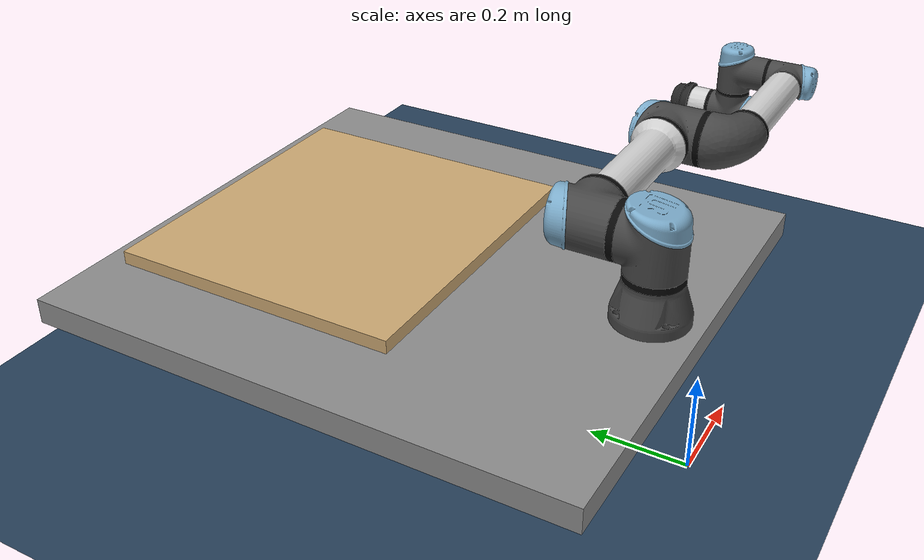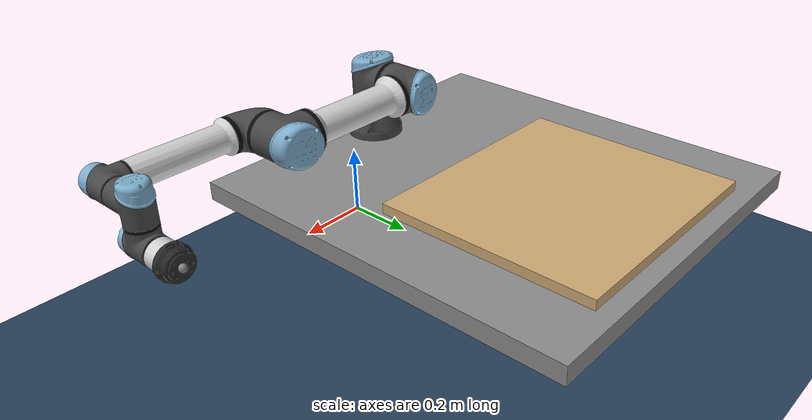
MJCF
<mujoco model="trajectory_design">
  <!--
    Trajectory design scene: UR5e + FT300s + Robotiq 2F-85 on the shared environment.
    No task objects. Uses FT300s robot without identification payload.
  -->
  <compiler angle="radian" autolimits="true"/>

  <include file="../common/environment.xml"/>
  <include file="../common/robots/ur5e_ft300s_gripper_no_payload.xml"/>

  <contact>
    <exclude body1="base" body2="table"/>
    <exclude body1="wrist_1_link" body2="table"/>
    <exclude body1="wrist_2_link" body2="table"/>
    <exclude body1="wrist_3_link" body2="table"/>
    <exclude body1="ft300s_mount" body2="table"/>
    <exclude body1="gripper_mount" body2="table"/>
    <exclude body1="base_mount" body2="table"/>
    <exclude body1="gripper_base" body2="table"/>
    <exclude body1="wrist_1_link" body2="work_surface"/>
    <exclude body1="wrist_2_link" body2="work_surface"/>
    <exclude body1="wrist_3_link" body2="work_surface"/>
    <exclude body1="ft300s_mount" body2="work_surface"/>
    <exclude body1="gripper_mount" body2="work_surface"/>
    <exclude body1="base_mount" body2="work_surface"/>
    <exclude body1="gripper_base" body2="work_surface"/>
  </contact>

  <keyframe>
    <key name="home"
      qpos="1.3632 -1.0768 1.6253 -2.1193 -1.5708 -0.2076 0 0 0 0 0 0 0 0"
      ctrl="1.3632 -1.0768 1.6253 -2.1193 -1.5708 -0.2076 0"/>
  </keyframe>
</mujoco>

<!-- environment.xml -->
<mujoco model="environment">

  <option integrator="implicitfast" timestep="0.002" cone="elliptic" impratio="10">
    <flag warmstart="enable"/>
  </option>

  <statistic center="0 0.4 0.35" extent="0.8"/>

  <visual>
    <headlight diffuse="0.6 0.6 0.6" ambient="0.3 0.3 0.3" specular="0 0 0"/>
    <rgba haze="0.15 0.25 0.35 1"/>
    <global azimuth="120" elevation="-20" offwidth="1920" offheight="1440"/>
  </visual>

  <default>
    <default class="table_contact">
      <geom condim="4" friction="0.5 0.005 0.001"/>
    </default>
  </default>

  <asset>
    <texture type="skybox" builtin="gradient" rgb1="0.3 0.5 0.7" rgb2="0 0 0"
      width="512" height="3072"/>
    <texture type="2d" name="table_tex" builtin="checker" mark="edge"
      rgb1="0.6 0.6 0.6" rgb2="0.5 0.5 0.5" markrgb="0.4 0.4 0.4"
      width="300" height="300"/>
    <texture type="2d" name="groundplane" builtin="checker" mark="edge"
      rgb1="0.2 0.3 0.4" rgb2="0.1 0.2 0.3" markrgb="0.8 0.8 0.8"
      width="300" height="300"/>
    <material name="table_mat" texture="table_tex" texuniform="true"
      texrepeat="3 3" reflectance="0.1"/>
    <material name="work_mat" rgba="0.80 0.66 0.45 1"
      specular="0.1" shininess="0.1" reflectance="0.0"/>
    <material name="groundplane" texture="groundplane" texuniform="true"
      texrepeat="5 5" reflectance="0.2"/>
  </asset>

  <worldbody>
    <light pos="0 0.4 1.5" dir="0 0 -1" directional="true"/>

    <!-- Ground plane -->
    <geom name="floor" size="0 0 0.05" type="plane" material="groundplane"/>

    <!-- Table: surface at z=0.3, extended in +y (to y=1.1) to fully support the work surface -->
    <body name="table" pos="0 0.55 0.275">
      <geom name="table_surface" type="box" size="0.5 0.55 0.025"
        class="table_contact" material="table_mat" mass="50"/>
    </body>

    <body name="work_surface" pos="0 0.75 0.3135">
      <geom name="work_surface_geom" type="box" size="0.325 0.3 0.0135"
        class="table_contact" material="work_mat" mass="20"/>
    </body>

    <!-- Top-down camera centered on push area -->
    <camera name="top_down" pos="0 0.5 1.2" xyaxes="1 0 0 0 1 0" fovy="45"/>
    <!-- Side view -->
    <camera name="side" pos="0.7 0.5 0.55" xyaxes="0 1 0 -0.25 0 0.97" fovy="60"/>
  </worldbody>
</mujoco>

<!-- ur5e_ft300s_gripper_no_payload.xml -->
<mujoco model="ur5e_ft300s_gripper">
  <!-- meshdir is relative to the TOP-LEVEL scene file's dir (scenes/tasks/),
       not this file's dir, because MuJoCo resolves include/mesh paths from the
       main model file. -->
  <compiler angle="radian" meshdir="../../assets/mujoco_menagerie" autolimits="true"/>

  <default>
    <default class="ur5e">
      <material specular="0.5" shininess="0.25"/>
      <joint axis="0 1 0" range="-6.28319 6.28319" armature="0.1"/>
      <general gaintype="fixed" biastype="affine" ctrlrange="-6.2831 6.2831" gainprm="2000" biasprm="0 -2000 -400"
        forcerange="-150 150"/>
      <default class="size3">
        <default class="size3_limited">
          <joint range="-3.1415 3.1415"/>
          <general ctrlrange="-3.1415 3.1415"/>
        </default>
      </default>
      <default class="size1">
        <general gainprm="500" biasprm="0 -500 -100" forcerange="-28 28"/>
      </default>
      <default class="visual">
        <geom type="mesh" contype="0" conaffinity="0" group="2"/>
      </default>
      <default class="collision">
        <geom type="capsule" group="3"/>
        <default class="eef_collision">
          <geom type="cylinder"/>
        </default>
      </default>
      <site size="0.001" rgba="0.5 0.5 0.5 0.3" group="4"/>
    </default>

    <default class="ft300s">
      <mesh scale="0.001 0.001 0.001"/>
    </default>

    <default class="2f85">
      <mesh scale="0.001 0.001 0.001"/>
      <general biastype="affine"/>
      <joint axis="1 0 0"/>
      <default class="driver">
        <joint range="0 0.8" armature="0.005" damping="0.1" solimplimit="0.95 0.99 0.001" solreflimit="0.005 1"/>
      </default>
      <default class="follower">
        <joint range="-0.872664 0.872664" armature="0.001" pos="0 -0.018 0.0065" solimplimit="0.95 0.99 0.001"
          solreflimit="0.005 1"/>
      </default>
      <default class="spring_link">
        <joint range="-0.29670597283 0.8" armature="0.001" stiffness="0.05" springref="2.62" damping="0.00125"/>
      </default>
      <default class="coupler">
        <joint range="-1.57 0" armature="0.001" solimplimit="0.95 0.99 0.001" solreflimit="0.005 1"/>
      </default>
      <default class="gripper_visual">
        <geom type="mesh" contype="0" conaffinity="0" group="2"/>
      </default>
      <default class="gripper_collision">
        <geom type="mesh" group="3"/>
        <default class="pad_box1">
          <geom mass="0" type="box" pos="0 -0.0026 0.028125" size="0.011 0.004 0.009375" friction="0.7"
            solimp="0.95 0.99 0.001" solref="0.004 1" priority="1" rgba="0.55 0.55 0.55 1"/>
        </default>
        <default class="pad_box2">
          <geom mass="0" type="box" pos="0 -0.0026 0.009375" size="0.011 0.004 0.009375" friction="0.6"
            solimp="0.95 0.99 0.001" solref="0.004 1" priority="1" rgba="0.45 0.45 0.45 1"/>
        </default>
      </default>
    </default>
  </default>

  <asset>
    <material class="ur5e" name="black" rgba="0.033 0.033 0.033 1"/>
    <material class="ur5e" name="jointgray" rgba="0.278 0.278 0.278 1"/>
    <material class="ur5e" name="linkgray" rgba="0.82 0.82 0.82 1"/>
    <material class="ur5e" name="urblue" rgba="0.49 0.678 0.8 1"/>

    <material name="ft300s_body" rgba="0.15 0.15 0.15 1" specular="0.3" shininess="0.4"/>

    <material name="gripper_metal" rgba="0.58 0.58 0.58 1"/>
    <material name="gripper_silicone" rgba="0.1882 0.1882 0.1882 1"/>
    <material name="gripper_gray" rgba="0.4627 0.4627 0.4627 1"/>
    <material name="gripper_black" rgba="0.149 0.149 0.149 1"/>

    <mesh file="universal_robots_ur5e/assets/base_0.obj"/>
    <mesh file="universal_robots_ur5e/assets/base_1.obj"/>
    <mesh file="universal_robots_ur5e/assets/shoulder_0.obj"/>
    <mesh file="universal_robots_ur5e/assets/shoulder_1.obj"/>
    <mesh file="universal_robots_ur5e/assets/shoulder_2.obj"/>
    <mesh file="universal_robots_ur5e/assets/upperarm_0.obj"/>
    <mesh file="universal_robots_ur5e/assets/upperarm_1.obj"/>
    <mesh file="universal_robots_ur5e/assets/upperarm_2.obj"/>
    <mesh file="universal_robots_ur5e/assets/upperarm_3.obj"/>
    <mesh file="universal_robots_ur5e/assets/forearm_0.obj"/>
    <mesh file="universal_robots_ur5e/assets/forearm_1.obj"/>
    <mesh file="universal_robots_ur5e/assets/forearm_2.obj"/>
    <mesh file="universal_robots_ur5e/assets/forearm_3.obj"/>
    <mesh file="universal_robots_ur5e/assets/wrist1_0.obj"/>
    <mesh file="universal_robots_ur5e/assets/wrist1_1.obj"/>
    <mesh file="universal_robots_ur5e/assets/wrist1_2.obj"/>
    <mesh file="universal_robots_ur5e/assets/wrist2_0.obj"/>
    <mesh file="universal_robots_ur5e/assets/wrist2_1.obj"/>
    <mesh file="universal_robots_ur5e/assets/wrist2_2.obj"/>
    <mesh file="universal_robots_ur5e/assets/wrist3.obj"/>

    <mesh class="ft300s" name="ft300s" file="../ft300s/ft300s.stl"/>

    <mesh class="2f85" name="gripper_base_mount" file="robotiq_2f85/assets/base_mount.stl"/>
    <mesh class="2f85" name="gripper_base" file="robotiq_2f85/assets/base.stl"/>
    <mesh class="2f85" name="gripper_driver" file="robotiq_2f85/assets/driver.stl"/>
    <mesh class="2f85" name="gripper_coupler" file="robotiq_2f85/assets/coupler.stl"/>
    <mesh class="2f85" name="gripper_follower" file="robotiq_2f85/assets/follower.stl"/>
    <mesh class="2f85" name="gripper_pad" file="robotiq_2f85/assets/pad.stl"/>
    <mesh class="2f85" name="gripper_silicone_pad" file="robotiq_2f85/assets/silicone_pad.stl"/>
    <mesh class="2f85" name="gripper_spring_link" file="robotiq_2f85/assets/spring_link.stl"/>
  </asset>

  <worldbody>
    <light name="spotlight" mode="targetbodycom" target="wrist_2_link" pos="0 -1 2"/>
    <body name="base" pos="0 0.1 0.3" quat="1 0 0 0" childclass="ur5e">
      <inertial mass="4.0" pos="0 0 0" diaginertia="0.00443333156 0.00443333156 0.0072"/>
      <geom mesh="base_0" material="black" class="visual"/>
      <geom mesh="base_1" material="jointgray" class="visual"/>
      <body name="shoulder_link" pos="0 0 0.163">
        <inertial mass="3.7" pos="0 0 0" diaginertia="0.0102675 0.0102675 0.00666"/>
        <joint name="shoulder_pan_joint" class="size3" axis="0 0 1"/>
        <geom mesh="shoulder_0" material="urblue" class="visual"/>
        <geom mesh="shoulder_1" material="black" class="visual"/>
        <geom mesh="shoulder_2" material="jointgray" class="visual"/>
        <geom class="collision" size="0.06 0.06" pos="0 0 -0.04"/>
        <body name="upper_arm_link" pos="0 0.138 0" quat="1 0 1 0">
          <inertial mass="8.393" pos="0 0 0.2125" diaginertia="0.133886 0.133886 0.0151074"/>
          <joint name="shoulder_lift_joint" class="size3"/>
          <geom mesh="upperarm_0" material="linkgray" class="visual"/>
          <geom mesh="upperarm_1" material="black" class="visual"/>
          <geom mesh="upperarm_2" material="jointgray" class="visual"/>
          <geom mesh="upperarm_3" material="urblue" class="visual"/>
          <geom class="collision" pos="0 -0.04 0" quat="1 1 0 0" size="0.06 0.06"/>
          <geom class="collision" size="0.05 0.2" pos="0 0 0.2"/>
          <body name="forearm_link" pos="0 -0.131 0.425">
            <inertial mass="2.275" pos="0 0 0.196" diaginertia="0.0311796 0.0311796 0.004095"/>
            <joint name="elbow_joint" class="size3_limited"/>
            <geom mesh="forearm_0" material="urblue" class="visual"/>
            <geom mesh="forearm_1" material="linkgray" class="visual"/>
            <geom mesh="forearm_2" material="black" class="visual"/>
            <geom mesh="forearm_3" material="jointgray" class="visual"/>
            <geom class="collision" pos="0 0.08 0" quat="1 1 0 0" size="0.055 0.06"/>
            <geom class="collision" size="0.038 0.19" pos="0 0 0.2"/>
            <body name="wrist_1_link" pos="0 0 0.392" quat="1 0 1 0">
              <inertial mass="1.219" pos="0 0.127 0" diaginertia="0.0025599 0.0025599 0.0021942"/>
              <joint name="wrist_1_joint" class="size1"/>
              <geom mesh="wrist1_0" material="black" class="visual"/>
              <geom mesh="wrist1_1" material="urblue" class="visual"/>
              <geom mesh="wrist1_2" material="jointgray" class="visual"/>
              <geom class="collision" pos="0 0.05 0" quat="1 1 0 0" size="0.04 0.07"/>
              <body name="wrist_2_link" pos="0 0.127 0">
                <inertial mass="1.219" pos="0 0 0.1" diaginertia="0.0025599 0.0025599 0.0021942"/>
                <joint name="wrist_2_joint" axis="0 0 1" class="size1"/>
                <geom mesh="wrist2_0" material="black" class="visual"/>
                <geom mesh="wrist2_1" material="urblue" class="visual"/>
                <geom mesh="wrist2_2" material="jointgray" class="visual"/>
                <geom class="collision" size="0.04 0.06" pos="0 0 0.04"/>
                <geom class="collision" pos="0 0.02 0.1" quat="1 1 0 0" size="0.04 0.04"/>
                <body name="wrist_3_link" pos="0 0 0.1">
                  <inertial mass="0.1889" pos="0 0.0771683 0" quat="1 0 0 1"
                    diaginertia="0.000132134 9.90863e-05 9.90863e-05"/>
                  <joint name="wrist_3_joint" class="size1"/>
                  <geom material="linkgray" mesh="wrist3" class="visual"/>
                  <geom class="eef_collision" pos="0 0.08 0" quat="1 1 0 0" size="0.04 0.02"/>
                  <site name="attachment_site" pos="0 0.1 0" quat="-1 1 0 0"/>
                  <body name="ft300s_mount" pos="0 0.094 0" quat="-1 1 0 0">
                    <inertial mass="0.300" pos="0 0 0.0211"
                      diaginertia="0.000193 0.000193 0.000297"/>
                    <geom type="mesh" mesh="ft300s" material="ft300s_body" pos="0 0 0.0422" quat="0 1 0 0"
                      contype="0" conaffinity="0" group="2"/>
                    <geom type="cylinder" size="0.0375 0.0211" pos="0 0 0.0211" group="3"/>
                    <body name="gripper_mount" pos="0 0 0.0422" childclass="2f85">
                      <site name="ft_sensor" pos="0 0 0" size="0.01"/>
                      <body name="base_mount" pos="0 0 0.007">
                        <geom class="gripper_visual" mesh="gripper_base_mount" material="gripper_black"/>
                        <geom class="gripper_collision" mesh="gripper_base_mount"/>
                        <body name="gripper_base" pos="0 0 0.0038" quat="1 0 0 -1">
                          <inertial mass="0.777441" pos="0 -2.70394e-05 0.0354675" quat="1 -0.00152849 0 0"
                            diaginertia="0.000260285 0.000225381 0.000152708"/>
                          <geom class="gripper_visual" mesh="gripper_base" material="gripper_black"/>
                          <geom class="gripper_collision" mesh="gripper_base"/>
                          <site name="pinch" pos="0 0 0.145" type="sphere" group="5" rgba="0.9 0.9 0.9 1" size="0.005"/>
                          <body name="right_driver" pos="0 0.0306011 0.054904">
                            <inertial mass="0.00899563" pos="2.96931e-12 0.0177547 0.00107314"
                              quat="0.681301 0.732003 0 0"
                              diaginertia="1.72352e-06 1.60906e-06 3.22006e-07"/>
                            <joint name="right_driver_joint" class="driver"/>
                            <geom class="gripper_visual" mesh="gripper_driver" material="gripper_gray"/>
                            <geom class="gripper_collision" mesh="gripper_driver"/>
                            <body name="right_coupler" pos="0 0.0315 -0.0041">
                              <inertial mass="0.0140974" pos="0 0.00301209 0.0232175"
                                quat="0.705636 -0.0455904 0.0455904 0.705636"
                                diaginertia="4.16206e-06 3.52216e-06 8.88131e-07"/>
                              <joint name="right_coupler_joint" class="coupler"/>
                              <geom class="gripper_visual" mesh="gripper_coupler" material="gripper_black"/>
                              <geom class="gripper_collision" mesh="gripper_coupler"/>
                            </body>
                          </body>
                          <body name="right_spring_link" pos="0 0.0132 0.0609">
                            <inertial mass="0.0221642" pos="-8.65005e-09 0.0181624 0.0212658"
                              quat="0.663403 -0.244737 0.244737 0.663403"
                              diaginertia="8.96853e-06 6.71733e-06 2.63931e-06"/>
                            <joint name="right_spring_link_joint" class="spring_link"/>
                            <geom class="gripper_visual" mesh="gripper_spring_link" material="gripper_black"/>
                            <geom class="gripper_collision" mesh="gripper_spring_link"/>
                            <body name="right_follower" pos="0 0.055 0.0375">
                              <inertial mass="0.0125222" pos="0 -0.011046 0.0124786" quat="1 0.1664 0 0"
                                diaginertia="2.67415e-06 2.4559e-06 6.02031e-07"/>
                              <joint name="right_follower_joint" class="follower"/>
                              <geom class="gripper_visual" mesh="gripper_follower" material="gripper_black"/>
                              <geom class="gripper_collision" mesh="gripper_follower"/>
                              <body name="right_pad" pos="0 -0.0189 0.01352">
                                <geom class="pad_box1" name="right_pad1"/>
                                <geom class="pad_box2" name="right_pad2"/>
                                <inertial mass="0.0035" pos="0 -0.0025 0.0185" quat="0.707107 0 0 0.707107"
                                  diaginertia="4.73958e-07 3.64583e-07 1.23958e-07"/>
                                <geom class="gripper_visual" mesh="gripper_pad"/>
                                <body name="right_silicone_pad">
                                  <geom class="gripper_visual" mesh="gripper_silicone_pad" material="gripper_black"/>
                                </body>
                              </body>
                            </body>
                          </body>
                          <body name="left_driver" pos="0 -0.0306011 0.054904" quat="0 0 0 1">
                            <inertial mass="0.00899563" pos="0 0.0177547 0.00107314" quat="0.681301 0.732003 0 0"
                              diaginertia="1.72352e-06 1.60906e-06 3.22006e-07"/>
                            <joint name="left_driver_joint" class="driver"/>
                            <geom class="gripper_visual" mesh="gripper_driver" material="gripper_gray"/>
                            <geom class="gripper_collision" mesh="gripper_driver"/>
                            <body name="left_coupler" pos="0 0.0315 -0.0041">
                              <inertial mass="0.0140974" pos="0 0.00301209 0.0232175"
                                quat="0.705636 -0.0455904 0.0455904 0.705636"
                                diaginertia="4.16206e-06 3.52216e-06 8.88131e-07"/>
                              <joint name="left_coupler_joint" class="coupler"/>
                              <geom class="gripper_visual" mesh="gripper_coupler" material="gripper_black"/>
                              <geom class="gripper_collision" mesh="gripper_coupler"/>
                            </body>
                          </body>
                          <body name="left_spring_link" pos="0 -0.0132 0.0609" quat="0 0 0 1">
                            <inertial mass="0.0221642" pos="-8.65005e-09 0.0181624 0.0212658"
                              quat="0.663403 -0.244737 0.244737 0.663403"
                              diaginertia="8.96853e-06 6.71733e-06 2.63931e-06"/>
                            <joint name="left_spring_link_joint" class="spring_link"/>
                            <geom class="gripper_visual" mesh="gripper_spring_link" material="gripper_black"/>
                            <geom class="gripper_collision" mesh="gripper_spring_link"/>
                            <body name="left_follower" pos="0 0.055 0.0375">
                              <inertial mass="0.0125222" pos="0 -0.011046 0.0124786" quat="1 0.1664 0 0"
                                diaginertia="2.67415e-06 2.4559e-06 6.02031e-07"/>
                              <joint name="left_follower_joint" class="follower"/>
                              <geom class="gripper_visual" mesh="gripper_follower" material="gripper_black"/>
                              <geom class="gripper_collision" mesh="gripper_follower"/>
                              <body name="left_pad" pos="0 -0.0189 0.01352">
                                <geom class="pad_box1" name="left_pad1"/>
                                <geom class="pad_box2" name="left_pad2"/>
                                <inertial mass="0.0035" pos="0 -0.0025 0.0185" quat="1 0 0 1"
                                  diaginertia="4.73958e-07 3.64583e-07 1.23958e-07"/>
                                <geom class="gripper_visual" mesh="gripper_pad"/>
                                <body name="left_silicone_pad">
                                  <geom class="gripper_visual" mesh="gripper_silicone_pad" material="gripper_black"/>
                                </body>
                              </body>
                            </body>
                          </body>
                        </body>
                      </body>
                    </body>
                  </body>
                </body>
              </body>
            </body>
          </body>
        </body>
      </body>
    </body>
  </worldbody>

  <contact>
    <exclude body1="gripper_base" body2="left_driver"/>
    <exclude body1="gripper_base" body2="right_driver"/>
    <exclude body1="gripper_base" body2="left_spring_link"/>
    <exclude body1="gripper_base" body2="right_spring_link"/>
    <exclude body1="right_coupler" body2="right_follower"/>
    <exclude body1="left_coupler" body2="left_follower"/>
  </contact>

  <tendon>
    <fixed name="split">
      <joint joint="right_driver_joint" coef="0.5"/>
      <joint joint="left_driver_joint" coef="0.5"/>
    </fixed>
  </tendon>

  <equality>
    <connect anchor="0 0 0" body1="right_follower" body2="right_coupler" solimp="0.95 0.99 0.001" solref="0.005 1"/>
    <connect anchor="0 0 0" body1="left_follower" body2="left_coupler" solimp="0.95 0.99 0.001" solref="0.005 1"/>
    <joint joint1="right_driver_joint" joint2="left_driver_joint" polycoef="0 1 0 0 0" solimp="0.95 0.99 0.001"
      solref="0.005 1"/>
  </equality>

  <actuator>
    <general class="size3" name="shoulder_pan" joint="shoulder_pan_joint"/>
    <general class="size3" name="shoulder_lift" joint="shoulder_lift_joint"/>
    <general class="size3_limited" name="elbow" joint="elbow_joint"/>
    <general class="size1" name="wrist_1" joint="wrist_1_joint"/>
    <general class="size1" name="wrist_2" joint="wrist_2_joint"/>
    <general class="size1" name="wrist_3" joint="wrist_3_joint"/>
    <general class="2f85" name="fingers_actuator" tendon="split" forcerange="-5 5" ctrlrange="0 255"
      gainprm="0.3137255 0 0" biasprm="0 -100 -10"/>
  </actuator>

  <sensor>
    <force name="ft_force" site="ft_sensor"/>
    <torque name="ft_torque" site="ft_sensor"/>
  </sensor>
</mujoco>
